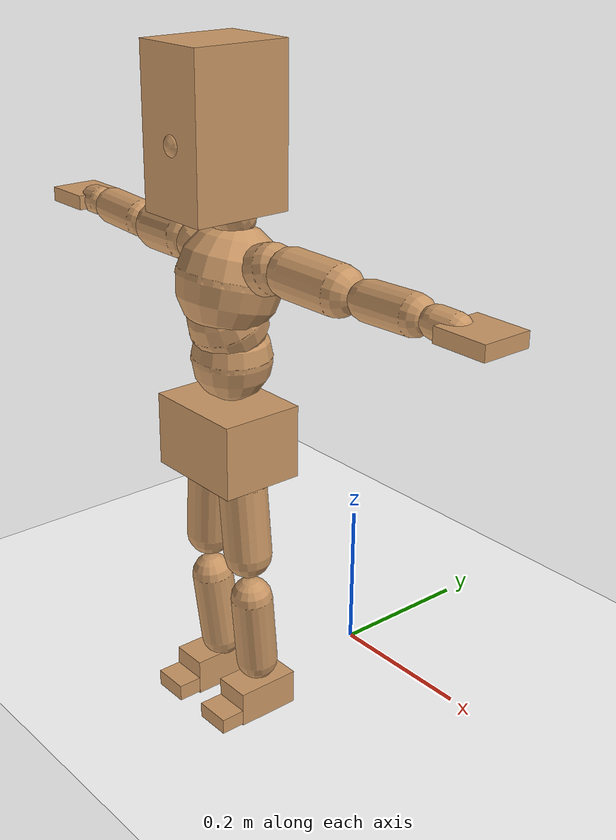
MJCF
<mujoco model="humanoid">
  <option integrator="implicitfast" />

  <visual>
    <global offwidth="1280" offheight="960" />
    <headlight active="1" ambient="0.34 0.34 0.34" diffuse="0.5 0.5 0.5" />
  </visual>

  <default>
    <joint damping="2" stiffness="2" armature="0.01" limited="true" solimplimit="0 .99 .01" />
    <geom condim="1" friction="0.7 0.005 0.0001" solimp=".99 .99 .003" solref="0.015 1" margin="0.001" rgba="0.8 0.6 .4 1" />
    <default class="smplcontact">
      <geom condim="3" friction="1. 0.005 0.0001" solref="0.015 1" solimp="0.98 0.98 0.001" priority="1" />
    </default>
    <default class="stiff_medium">
      <joint stiffness="10" />
    </default>
    <default class="stiff_medium_higher">
      <joint stiffness="50" />
    </default>
    <default class="stiff_high">
      <joint stiffness="100" />
    </default>
  </default>

  <asset>
    <texture type="skybox" builtin="gradient" rgb1="0.99 0.99 0.99" rgb2="0.608 0.828 0.892" width="100" />
    <texture builtin="flat" height="1278" mark="cross" markrgb="1 1 1" name="texgeom" random="0.01" rgb1="0.8 0.6 0.4" rgb2="0.8 0.6 0.4" type="cube" width="127" />
    <texture name="texplane" type="2d" builtin="checker" markrgb="1 1 1" rgb1="0.756 0.772 0.76" rgb2="0.6 0.6 0.6" width="100" height="100" />
    <material name="MatPlane" reflectance="0.5" texture="texplane" texrepeat="1 1" texuniform="true" />
    <material name="geom" texture="texgeom" texuniform="true" />
  </asset>

  <worldbody>
    <light name="tracking_light" pos="0 0 7" dir="0 0 -1" directional="true" cutoff="100" exponent="1" diffuse="1 1 1" specular="0.1 0.1 0.1" mode="trackcom" />
    <camera name="back" pos="0 3 2.4" xyaxes="-1 0 0 0 -1 2" mode="trackcom" />
    <camera name="side" pos="-3 0 2.4" xyaxes="0 -1 0 1 0 2" mode="trackcom" />
    <camera name="front_side" pos="-2.8 -2.8 0.8" xyaxes="0.5 -0.5 0 0.1 0.1 1" mode="trackcom" />
    <geom condim="3" name="floor" pos="0 0 0" rgba="1 1 1 1" size="100 100 .2" type="plane" material="MatPlane" />
    <body name="Pelvis" pos="-0.0018 -0.2233 0.396609" euler="90 0 0">
      <site name="Pelvis" size="0.01" />
      <freejoint name="Pelvis" />
      <geom type="box" pos="-0.0000 -0.0121 -0.0055" size="0.0705148 0.0476255 0.0547495" quat="1.0000 0.0000 0.0000 0.0000" density="3165.830099" name="Pelvis" />
      <body name="L_Hip" pos="0.0291237 -0.0383008 -0.00284951">
        <joint name="L_Hip_x" type="hinge" pos="0 0 0" axis="1 0 0" stiffness="10" range="-160.0 22.92" class="stiff_medium" damping="15" />
        <joint name="L_Hip_y" type="hinge" pos="0 0 0" axis="0 1 0" stiffness="10" range="-70.0 70.0" class="stiff_medium" damping="10" />
        <joint name="L_Hip_z" type="hinge" pos="0 0 0" axis="0 0 1" stiffness="10" range="-28.65 90.0" class="stiff_medium" damping="10" />
        <geom type="capsule" density="2040.816327" fromto="0.00289141 -0.0314284 -0.000377141 0.0114818 -0.125797 -0.00150856" size="0.0310317" name="L_Hip" />
        <body name="L_Knee" pos="0.0143733 -0.157226 -0.0018857">
          <joint name="L_Knee_x" type="hinge" pos="0 0 0" axis="1 0 0" range="-5.16 171.89" damping="8" />
          <joint name="L_Knee_y" type="hinge" pos="0 0 0" axis="0 1 0" range="-4.58 6.88" damping="8" />
          <joint name="L_Knee_z" type="hinge" pos="0 0 0" axis="0 0 1" range="-6.88 4.58" damping="8" />
          <geom type="capsule" density="1234.567901" fromto="-0.00113142 -0.033356 -0.0036457 -0.0045676 -0.133424 -0.0146666" size="0.0272978" name="L_Knee" />
          <body name="L_Ankle" pos="-0.00569902 -0.16678 -0.0183123">
            <joint name="L_Ankle_x" type="hinge" pos="0 0 0" axis="1 0 0" range="-45.84 45.84" class="stiff_medium" damping="6" />
            <joint name="L_Ankle_y" type="hinge" pos="0 0 0" axis="0 1 0" range="-74.48 22.92" class="stiff_medium" damping="3" />
            <joint name="L_Ankle_z" type="hinge" pos="0 0 0" axis="0 0 1" range="-4.58 4.58" class="stiff_medium" damping="6" />
            <geom type="box" pos="0.00976376 -0.0100152 0.0101409" size="0.0243712 0.0234125 0.0428894" quat="1.0000 0.0000 0.0000 0.0000" density="449.071558" name="L_Ankle" class="smplcontact" />
            <body name="L_Toe" pos="0.0110628 -0.0233827 0.0499921">
              <joint name="L_Toe_x" type="hinge" pos="0 0 0" axis="1 0 0" range="-91.67 22.92" />
              <joint name="L_Toe_y" type="hinge" pos="0 0 0" axis="0 1 0" range="-4.58 4.58" />
              <joint name="L_Toe_z" type="hinge" pos="0 0 0" axis="0 0 1" range="-4.58 4.58" />
              <geom type="box" pos="-0.00125714 0.00230475 0.0103923" size="0.024119 0.0100916 0.0250272" quat="1.0000 0.0000 0.0000 0.0000" density="423.206892" name="L_Toe" class="smplcontact" />
            </body>
          </body>
        </body>
      </body>
      <body name="R_Hip" pos="-0.0283694 -0.0379236 -0.0018019">
        <joint name="R_Hip_x" type="hinge" pos="0 0 0" axis="1 0 0" stiffness="10" range="-160.0 22.92" class="stiff_medium" damping="15" />
        <joint name="R_Hip_y" type="hinge" pos="0 0 0" axis="0 1 0" stiffness="10" range="-70.0 70.0" class="stiff_medium" damping="10" />
        <joint name="R_Hip_z" type="hinge" pos="0 0 0" axis="0 0 1" stiffness="10" range="-90.0 28.65" class="stiff_medium" damping="10" />
        <geom type="capsule" density="2040.816327" fromto="-0.00322665 -0.032057 -0.000754282 -0.0128228 -0.12827 -0.00297522" size="0.0305776" name="R_Hip" />
        <body name="R_Knee" pos="-0.0160494 -0.160327 -0.0037295">
          <joint name="R_Knee_x" type="hinge" pos="0 0 0" axis="1 0 0" range="-5.16 171.89" damping="8" />
          <joint name="R_Knee_y" type="hinge" pos="0 0 0" axis="0 1 0" range="-6.88 4.58" damping="8" />
          <joint name="R_Knee_z" type="hinge" pos="0 0 0" axis="0 0 1" range="-4.58 6.88" damping="8" />
          <geom type="capsule" density="1234.567901" fromto="0.00134095 -0.0333979 -0.00356189 0.00527997 -0.13355 -0.0141637" size="0.0272978" name="R_Knee" />
          <body name="R_Ankle" pos="0.00662092 -0.166948 -0.0177256">
            <joint name="R_Ankle_x" type="hinge" pos="0 0 0" axis="1 0 0" range="-45.84 45.84" class="stiff_medium" damping="6" />
            <joint name="R_Ankle_y" type="hinge" pos="0 0 0" axis="0 1 0" range="-22.92 74.48" class="stiff_medium" damping="3" />
            <joint name="R_Ankle_z" type="hinge" pos="0 0 0" axis="0 0 1" range="-4.58 4.58" class="stiff_medium" damping="6" />
            <geom type="box" pos="-0.00888376 -0.00729139 0.0107276" size="0.0243712 0.024119 0.0436462" quat="1.0000 0.0000 0.0000 0.0000" density="434.700981" name="R_Ankle" class="smplcontact" />
            <body name="R_Toe" pos="-0.0106438 -0.0201561 0.0516683">
              <joint name="R_Toe_x" type="hinge" pos="0 0 0" axis="1 0 0" range="-91.67 22.92" />
              <joint name="R_Toe_y" type="hinge" pos="0 0 0" axis="0 1 0" range="-4.58 4.58" />
              <joint name="R_Toe_z" type="hinge" pos="0 0 0" axis="0 0 1" range="-4.58 4.58" />
              <geom type="box" pos="0.00175999 0.0018857 0.00951233" size="0.0241694 0.0108989 0.0248758" quat="1.0000 0.0000 0.0000 0.0000" density="407.384095" name="R_Toe" class="smplcontact" />
            </body>
          </body>
        </body>
      </body>
      <body name="Torso" pos="-0.00128085 0.0558453 -0.0136795">
        <joint name="Torso_x" type="hinge" pos="0 0 0" axis="1 0 0" range="-25.78 57.3" class="stiff_medium" damping="15" />
        <joint name="Torso_y" type="hinge" pos="0 0 0" axis="0 1 0" range="-57.3 57.3" class="stiff_high" damping="20" />
        <joint name="Torso_z" type="hinge" pos="0 0 0" axis="0 0 1" range="-34.38 34.38" class="stiff_high" damping="20" />
        <geom type="capsule" density="2040.816327" fromto="0.00128085 0.0311504 0.000256171 0.00153703 0.038067 0.000307405" size="0.0507258" name="Torso" />
        <body name="Spine" pos="0.00281788 0.0692686 0.000563576">
          <joint name="Spine_x" type="hinge" pos="0 0 0" axis="1 0 0" stiffness="10" range="-25.78 57.3" class="stiff_medium" damping="15" />
          <joint name="Spine_y" type="hinge" pos="0 0 0" axis="0 1 0" stiffness="10" range="-57.3 57.3" class="stiff_high" damping="8" />
          <joint name="Spine_z" type="hinge" pos="0 0 0" axis="0 0 1" stiffness="20" range="-34.38 34.38" class="stiff_high" damping="12" />
          <geom type="capsule" density="2040.816327" fromto="0.000358639 0.0121937 0.0058407 0.000409873 0.0149091 0.00717279" size="0.0498023" name="Spine" />
          <body name="Chest" pos="0.000768513 0.0271029 0.0130135">
            <joint name="Chest_x" type="hinge" pos="0 0 0" axis="1 0 0" stiffness="10" range="-25.78 57.3" class="stiff_medium" damping="15" />
            <joint name="Chest_y" type="hinge" pos="0 0 0" axis="0 1 0" stiffness="10" range="-57.3 57.3" class="stiff_high" damping="8" />
            <joint name="Chest_z" type="hinge" pos="0 0 0" axis="0 0 1" stiffness="20" range="-34.38 34.38" class="stiff_high" damping="12" />
            <geom type="capsule" density="2040.816327" fromto="-0.000461108 0.0349417 -0.00886351 -0.000512342 0.0426781 -0.0108616" size="0.0660952" name="Chest" />
            <body name="Neck" pos="-0.00143456 0.10959 -0.0219795">
              <joint name="Neck_x" type="hinge" pos="0 0 0" axis="1 0 0" range="-28.65 57.3" class="stiff_medium_higher" damping="10" />
              <joint name="Neck_y" type="hinge" pos="0 0 0" axis="0 1 0" range="-40.11 40.11" class="stiff_medium_higher" damping="10" />
              <joint name="Neck_z" type="hinge" pos="0 0 0" axis="0 0 1" range="-40.11 40.11" class="stiff_medium_higher" damping="10" />
              <geom type="capsule" density="1000" fromto="0.000512342 0.00666044 0.00527712 0.0021006 0.0266418 0.0210572" size="0.02876" name="Neck" />
              <body name="Head" pos="0.00382603 0.0478254 0.0377453">
                <joint name="Head_x" type="hinge" pos="0 0 0" axis="1 0 0" range="-28.65 57.3" class="stiff_medium_higher" damping="2" />
                <joint name="Head_y" type="hinge" pos="0 0 0" axis="0 1 0" range="-40.11 40.11" class="stiff_medium_higher" damping="2" />
                <joint name="Head_z" type="hinge" pos="0 0 0" axis="0 0 1" range="-40.11 40.11" class="stiff_medium_higher" damping="2" />
                <geom type="box" pos="-0.00309025 0.0644539 -0.00853499" size="0.0513458 0.0977774 0.0643941" quat="1.0000 0.0000 0.0000 0.0000" density="1018.069894" name="Head" />
                <geom type="capsule" name="nose" size="0.0169458 0.00847291" pos="0 0.0515042 0.0367887" quat="1 0 0 0" mass="0" contype="0" conaffinity="0" />
              </body>
            </body>
            <body name="L_Thorax" pos="0.0358848 0.0554211 -0.0155288">
              <joint name="L_Thorax_x" type="hinge" pos="0 0 0" axis="1 0 0" range="-10.89 4.58" class="stiff_medium_higher" damping="20" />
              <joint name="L_Thorax_y" type="hinge" pos="0 0 0" axis="0 1 0" range="-28.65 17.19" class="stiff_medium_higher" damping="20" />
              <joint name="L_Thorax_z" type="hinge" pos="0 0 0" axis="0 0 1" range="-31.51 40.11" class="stiff_medium_higher" damping="20" />
              <geom type="capsule" density="1000" fromto="0.00828812 0.00277789 -0.000819704 0.0331525 0.0111115 -0.00323328" size="0.031236" name="L_Thorax" />
              <body name="L_Shoulder" pos="0.0414406 0.0138894 -0.00405298">
                <joint name="L_Shoulder_x" type="hinge" pos="0 0 0" axis="1 0 0" range="-97.4 97.4" class="stiff_medium" damping="6" />
                <joint name="L_Shoulder_y" type="hinge" pos="0 0 0" axis="0 1 0" range="-108.86 80.21" class="stiff_medium" damping="6" />
                <joint name="L_Shoulder_z" type="hinge" pos="0 0 0" axis="0 0 1" range="-97.4 85.94" class="stiff_medium" damping="6" />
                <geom type="capsule" density="1000" fromto="0.0236348 -0.00118402 -0.00250465 0.0945848 -0.00464499 -0.0100186" size="0.0309962" name="L_Shoulder" />
                <body name="L_Elbow" pos="0.11822 -0.00582901 -0.0125233">
                  <joint name="L_Elbow_x" type="hinge" pos="0 0 0" axis="1 0 0" range="-17.19 4.58" damping="5" />
                  <joint name="L_Elbow_y" type="hinge" pos="0 0 0" axis="0 1 0" range="-180.0 17.19" damping="5" />
                  <joint name="L_Elbow_z" type="hinge" pos="0 0 0" axis="0 0 1" range="-100.84 4.58" damping="5" />
                  <geom type="capsule" density="1000" fromto="0.0226785 0.000819704 -9.10783e-05 0.090805 0.00327882 -0.000409852" size="0.0242814" name="L_Elbow" />
                  <body name="L_Wrist" pos="0.113484 0.00409852 -0.00054647">
                    <joint name="L_Wrist_x" type="hinge" pos="0 0 0" axis="1 0 0" range="-180.0 22.92" />
                    <joint name="L_Wrist_y" type="hinge" pos="0 0 0" axis="0 1 0" range="-17.19 17.19" />
                    <joint name="L_Wrist_z" type="hinge" pos="0 0 0" axis="0 0 1" range="-22.92 22.92" />
                    <geom type="capsule" density="1000" fromto="0.00765057 -0.000728626 -0.00136617 0.0306023 -0.00296004 -0.0054647" size="0.0190654" name="L_Wrist" class="smplcontact" />
                    <body name="L_Hand" pos="0.0382529 -0.00373421 -0.00678533">
                      <joint name="L_Hand_x" type="hinge" pos="0 0 0" axis="1 0 0" range="-17.19 17.19" />
                      <joint name="L_Hand_y" type="hinge" pos="0 0 0" axis="0 1 0" range="-51.57 51.57" />
                      <joint name="L_Hand_z" type="hinge" pos="0 0 0" axis="0 0 1" range="-91.67 91.67" />
                      <geom type="box" pos="0.0224508 0.000455391 -0.00264127" size="0.0350731 0.00947273 0.0322553" quat="1.0000 0.0000 0.0000 0.0000" density="400.552564" name="L_Hand" class="smplcontact" />
                    </body>
                  </body>
                </body>
              </body>
            </body>
            <body name="R_Thorax" pos="-0.037251 0.0541005 -0.0175781">
              <joint name="R_Thorax_x" type="hinge" pos="0 0 0" axis="1 0 0" range="-10.89 4.58" class="stiff_medium_higher" damping="20" />
              <joint name="R_Thorax_y" type="hinge" pos="0 0 0" axis="0 1 0" range="-17.19 28.65" class="stiff_medium_higher" damping="20" />
              <joint name="R_Thorax_z" type="hinge" pos="0 0 0" axis="0 0 1" range="-40.11 31.51" class="stiff_medium_higher" damping="20" />
              <geom type="capsule" density="1000" fromto="-0.00874351 0.00296004 -0.000819704 -0.034974 0.0118402 -0.00332436" size="0.0306365" name="R_Thorax" />
              <body name="R_Shoulder" pos="-0.0437176 0.0148458 -0.00414406">
                <joint name="R_Shoulder_x" type="hinge" pos="0 0 0" axis="1 0 0" range="-97.4 97.4" class="stiff_medium" damping="6" />
                <joint name="R_Shoulder_y" type="hinge" pos="0 0 0" axis="0 1 0" range="-80.21 108.86" class="stiff_medium" damping="6" />
                <joint name="R_Shoulder_z" type="hinge" pos="0 0 0" axis="0 0 1" range="-85.94 97.4" class="stiff_medium" damping="6" />
                <geom type="capsule" density="1000" fromto="-0.0230883 -0.00122956 -0.00195818 -0.0924444 -0.00487269 -0.00778719" size="0.0318356" name="R_Shoulder" />
                <body name="R_Elbow" pos="-0.115533 -0.0060567 -0.00974537">
                  <joint name="R_Elbow_x" type="hinge" pos="0 0 0" axis="1 0 0" range="-17.19 4.58" damping="5" />
                  <joint name="R_Elbow_y" type="hinge" pos="0 0 0" axis="0 1 0" range="-17.19 180.0" damping="5" />
                  <joint name="R_Elbow_z" type="hinge" pos="0 0 0" axis="0 0 1" range="-4.58 100.84" damping="5" />
                  <geom type="capsule" density="1000" fromto="-0.0232705 0.000728626 -0.00050093 -0.0929909 0.00282343 -0.00200372" size="0.0244612" name="R_Elbow" />
                  <body name="R_Wrist" pos="-0.116261 0.00355205 -0.00255019">
                    <joint name="R_Wrist_x" type="hinge" pos="0 0 0" axis="1 0 0" range="-180.0 22.92" />
                    <joint name="R_Wrist_y" type="hinge" pos="0 0 0" axis="0 1 0" range="-17.19 17.19" />
                    <joint name="R_Wrist_z" type="hinge" pos="0 0 0" axis="0 0 1" range="-22.92 22.92" />
                    <geom type="capsule" density="1000" fromto="-0.00769611 -0.00054647 -0.000956322 -0.03083 -0.00223142 -0.00377975" size="0.019545" name="R_Wrist" class="smplcontact" />
                    <body name="R_Hand" pos="-0.0385261 -0.00277789 -0.00469053">
                      <joint name="R_Hand_x" type="hinge" pos="0 0 0" axis="1 0 0" range="-17.19 17.19" />
                      <joint name="R_Hand_y" type="hinge" pos="0 0 0" axis="0 1 0" range="-51.57 51.57" />
                      <joint name="R_Hand_z" type="hinge" pos="0 0 0" axis="0 0 1" range="-91.67 91.67" />
                      <geom type="box" pos="-0.0210391 -0.000409852 -0.00359759" size="0.0341138 0.00983246 0.0327349" quat="1.0000 0.0000 0.0000 0.0000" density="403.679611" name="R_Hand" class="smplcontact" />
                    </body>
                  </body>
                </body>
              </body>
            </body>
          </body>
        </body>
      </body>
    </body>
  </worldbody>
  <actuator>
    <general name="L_Hip_x" joint="L_Hip_x" biastype="affine" gainprm="287.33006409732246" biasprm="-215.3247604770444 -180 -2.0" ctrllimited="true" ctrlrange="-1 1" forcerange="-360 360" />
    <general name="L_Hip_y" joint="L_Hip_y" biastype="affine" gainprm="219.9114857512855" biasprm="0.0 -180 -2.0" ctrllimited="true" ctrlrange="-1 1" forcerange="-360 360" />
    <general name="L_Hip_z" joint="L_Hip_z" biastype="affine" gainprm="186.3749841742145" biasprm="96.3683546488669 -180 -2.0" ctrllimited="true" ctrlrange="-1 1" forcerange="-360 360" />
    <general name="L_Knee_x" joint="L_Knee_x" biastype="affine" gainprm="278.10948965903646" biasprm="261.8988715665131 -180 -2.0" ctrllimited="true" ctrlrange="-1 1" forcerange="-360 360" />
    <general name="L_Knee_y" joint="L_Knee_y" biastype="affine" gainprm="18.001325905069514" biasprm="3.612831551628262 -180 -2.0" ctrllimited="true" ctrlrange="-1 1" forcerange="-360 360" />
    <general name="L_Knee_z" joint="L_Knee_z" biastype="affine" gainprm="18.001325905069514" biasprm="-3.612831551628262 -180 -2.0" ctrllimited="true" ctrlrange="-1 1" forcerange="-360 360" />
    <general name="L_Ankle_x" joint="L_Ankle_x" biastype="affine" gainprm="72.00530362027807" biasprm="0.0 -90 -2.0" ctrllimited="true" ctrlrange="-1 1" forcerange="-180 180" />
    <general name="L_Ankle_y" joint="L_Ankle_y" biastype="affine" gainprm="76.49778111491148" biasprm="-40.49512930477244 -90 -2.0" ctrllimited="true" ctrlrange="-1 1" forcerange="-180 180" />
    <general name="L_Ankle_z" joint="L_Ankle_z" biastype="affine" gainprm="7.1942471767206255" biasprm="0.0 -90 -2.0" ctrllimited="true" ctrlrange="-1 1" forcerange="-180 180" />
    <general name="L_Toe_x" joint="L_Toe_x" biastype="affine" gainprm="71.99902043497087" biasprm="-43.19689898685965 -72 -0.8" ctrllimited="true" ctrlrange="-1 1" forcerange="-144 144" />
    <general name="L_Toe_y" joint="L_Toe_y" biastype="affine" gainprm="5.755397741376501" biasprm="0.0 -72 -0.8" ctrllimited="true" ctrlrange="-1 1" forcerange="-144 144" />
    <general name="L_Toe_z" joint="L_Toe_z" biastype="affine" gainprm="5.755397741376501" biasprm="0.0 -72 -0.8" ctrllimited="true" ctrlrange="-1 1" forcerange="-144 144" />
    <general name="R_Hip_x" joint="R_Hip_x" biastype="affine" gainprm="287.33006409732246" biasprm="-215.3247604770444 -180 -2.0" ctrllimited="true" ctrlrange="-1 1" forcerange="-360 360" />
    <general name="R_Hip_y" joint="R_Hip_y" biastype="affine" gainprm="219.9114857512855" biasprm="0.0 -180 -2.0" ctrllimited="true" ctrlrange="-1 1" forcerange="-360 360" />
    <general name="R_Hip_z" joint="R_Hip_z" biastype="affine" gainprm="186.3749841742145" biasprm="-96.3683546488669 -180 -2.0" ctrllimited="true" ctrlrange="-1 1" forcerange="-360 360" />
    <general name="R_Knee_x" joint="R_Knee_x" biastype="affine" gainprm="278.10948965903646" biasprm="261.8988715665131 -180 -2.0" ctrllimited="true" ctrlrange="-1 1" forcerange="-360 360" />
    <general name="R_Knee_y" joint="R_Knee_y" biastype="affine" gainprm="18.001325905069514" biasprm="-3.612831551628262 -180 -2.0" ctrllimited="true" ctrlrange="-1 1" forcerange="-360 360" />
    <general name="R_Knee_z" joint="R_Knee_z" biastype="affine" gainprm="18.001325905069514" biasprm="3.612831551628262 -180 -2.0" ctrllimited="true" ctrlrange="-1 1" forcerange="-360 360" />
    <general name="R_Ankle_x" joint="R_Ankle_x" biastype="affine" gainprm="72.00530362027807" biasprm="0.0 -90 -2.0" ctrllimited="true" ctrlrange="-1 1" forcerange="-180 180" />
    <general name="R_Ankle_y" joint="R_Ankle_y" biastype="affine" gainprm="76.49778111491148" biasprm="40.49512930477244 -90 -2.0" ctrllimited="true" ctrlrange="-1 1" forcerange="-180 180" />
    <general name="R_Ankle_z" joint="R_Ankle_z" biastype="affine" gainprm="7.1942471767206255" biasprm="0.0 -90 -2.0" ctrllimited="true" ctrlrange="-1 1" forcerange="-180 180" />
    <general name="R_Toe_x" joint="R_Toe_x" biastype="affine" gainprm="71.99902043497087" biasprm="-43.19689898685965 -72 -0.8" ctrllimited="true" ctrlrange="-1 1" forcerange="-144 144" />
    <general name="R_Toe_y" joint="R_Toe_y" biastype="affine" gainprm="5.755397741376501" biasprm="0.0 -72 -0.8" ctrllimited="true" ctrlrange="-1 1" forcerange="-144 144" />
    <general name="R_Toe_z" joint="R_Toe_z" biastype="affine" gainprm="5.755397741376501" biasprm="0.0 -72 -0.8" ctrllimited="true" ctrlrange="-1 1" forcerange="-144 144" />
    <general name="Torso_x" joint="Torso_x" biastype="affine" gainprm="174.00234510682668" biasprm="66.0153336274335 -240 -4.0" ctrllimited="true" ctrlrange="-1 1" forcerange="-360 360" />
    <general name="Torso_y" joint="Torso_y" biastype="affine" gainprm="240.0176787342602" biasprm="0.0 -240 -4.0" ctrllimited="true" ctrlrange="-1 1" forcerange="-360 360" />
    <general name="Torso_z" joint="Torso_z" biastype="affine" gainprm="144.01060724055614" biasprm="0.0 -240 -4.0" ctrllimited="true" ctrlrange="-1 1" forcerange="-360 360" />
    <general name="Spine_x" joint="Spine_x" biastype="affine" gainprm="174.00234510682668" biasprm="66.0153336274335 -240 -4.0" ctrllimited="true" ctrlrange="-1 1" forcerange="-360 360" />
    <general name="Spine_y" joint="Spine_y" biastype="affine" gainprm="240.0176787342602" biasprm="0.0 -240 -4.0" ctrllimited="true" ctrlrange="-1 1" forcerange="-360 360" />
    <general name="Spine_z" joint="Spine_z" biastype="affine" gainprm="144.01060724055614" biasprm="0.0 -240 -4.0" ctrllimited="true" ctrlrange="-1 1" forcerange="-360 360" />
    <general name="Chest_x" joint="Chest_x" biastype="affine" gainprm="174.00234510682668" biasprm="66.0153336274335 -240 -4.0" ctrllimited="true" ctrlrange="-1 1" forcerange="-360 360" />
    <general name="Chest_y" joint="Chest_y" biastype="affine" gainprm="240.0176787342602" biasprm="0.0 -240 -4.0" ctrllimited="true" ctrlrange="-1 1" forcerange="-360 360" />
    <general name="Chest_z" joint="Chest_z" biastype="affine" gainprm="144.01060724055614" biasprm="0.0 -240 -4.0" ctrllimited="true" ctrlrange="-1 1" forcerange="-360 360" />
    <general name="Neck_x" joint="Neck_x" biastype="affine" gainprm="27.00198885760427" biasprm="9.000662952534757 -36 -0.8" ctrllimited="true" ctrlrange="-1 1" forcerange="-72 72" />
    <general name="Neck_y" joint="Neck_y" biastype="affine" gainprm="25.20185626709732" biasprm="0.0 -36 -0.8" ctrllimited="true" ctrlrange="-1 1" forcerange="-72 72" />
    <general name="Neck_z" joint="Neck_z" biastype="affine" gainprm="25.20185626709732" biasprm="0.0 -36 -0.8" ctrllimited="true" ctrlrange="-1 1" forcerange="-72 72" />
    <general name="Head_x" joint="Head_x" biastype="affine" gainprm="18.001325905069514" biasprm="6.000441968356505 -24 -0.8" ctrllimited="true" ctrlrange="-1 1" forcerange="-48 48" />
    <general name="Head_y" joint="Head_y" biastype="affine" gainprm="16.801237511398213" biasprm="0.0 -24 -0.8" ctrllimited="true" ctrlrange="-1 1" forcerange="-48 48" />
    <general name="Head_z" joint="Head_z" biastype="affine" gainprm="16.801237511398213" biasprm="0.0 -24 -0.8" ctrllimited="true" ctrlrange="-1 1" forcerange="-48 48" />
    <general name="L_Thorax_x" joint="L_Thorax_x" biastype="affine" gainprm="16.200146117011364" biasprm="-6.6078165480505335 -120 -1.6" ctrllimited="true" ctrlrange="-1 1" forcerange="-240 240" />
    <general name="L_Thorax_y" joint="L_Thorax_y" biastype="affine" gainprm="48.00353574685204" biasprm="-12.00088393671301 -120 -1.6" ctrllimited="true" ctrlrange="-1 1" forcerange="-240 240" />
    <general name="L_Thorax_z" joint="L_Thorax_z" biastype="affine" gainprm="75.00028861670033" biasprm="9.00589894029074 -120 -1.6" ctrllimited="true" ctrlrange="-1 1" forcerange="-240 240" />
    <general name="L_Shoulder_x" joint="L_Shoulder_x" biastype="affine" gainprm="81.5976331892389" biasprm="0.0 -48 -1.6" ctrllimited="true" ctrlrange="-1 1" forcerange="-96 96" />
    <general name="L_Shoulder_y" joint="L_Shoulder_y" biastype="affine" gainprm="79.19745640189629" biasprm="-12.00088393671301 -48 -1.6" ctrllimited="true" ctrlrange="-1 1" forcerange="-96 96" />
    <general name="L_Shoulder_z" joint="L_Shoulder_z" biastype="affine" gainprm="76.79727961455369" biasprm="-4.800353574685214 -48 -1.6" ctrllimited="true" ctrlrange="-1 1" forcerange="-96 96" />
    <general name="L_Elbow_x" joint="L_Elbow_x" biastype="affine" gainprm="13.67849441372996" biasprm="-7.923096672353461 -72 -0.8" ctrllimited="true" ctrlrange="-1 1" forcerange="-144 144" />
    <general name="L_Elbow_y" joint="L_Elbow_y" biastype="affine" gainprm="123.89813107227425" biasprm="-102.29653998619085 -72 -0.8" ctrllimited="true" ctrlrange="-1 1" forcerange="-144 144" />
    <general name="L_Elbow_z" joint="L_Elbow_z" biastype="affine" gainprm="66.23733950828719" biasprm="-60.4819417669107 -72 -0.8" ctrllimited="true" ctrlrange="-1 1" forcerange="-144 144" />
    <general name="L_Wrist_x" joint="L_Wrist_x" biastype="affine" gainprm="21.24973270888136" biasprm="-16.449379134196157 -12 -0.8" ctrllimited="true" ctrlrange="-1 1" forcerange="-24 24" />
    <general name="L_Wrist_y" joint="L_Wrist_y" biastype="affine" gainprm="3.6002651810139037" biasprm="0.0 -12 -0.8" ctrllimited="true" ctrlrange="-1 1" forcerange="-24 24" />
    <general name="L_Wrist_z" joint="L_Wrist_z" biastype="affine" gainprm="4.800353574685205" biasprm="0.0 -12 -0.8" ctrllimited="true" ctrlrange="-1 1" forcerange="-24 24" />
    <general name="L_Hand_x" joint="L_Hand_x" biastype="affine" gainprm="3.6002651810139037" biasprm="0.0 -12 -0.8" ctrllimited="true" ctrlrange="-1 1" forcerange="-24 24" />
    <general name="L_Hand_y" joint="L_Hand_y" biastype="affine" gainprm="10.800795543041708" biasprm="0.0 -12 -0.8" ctrllimited="true" ctrlrange="-1 1" forcerange="-24 24" />
    <general name="L_Hand_z" joint="L_Hand_z" biastype="affine" gainprm="19.199319903638422" biasprm="0.0 -12 -0.8" ctrllimited="true" ctrlrange="-1 1" forcerange="-24 24" />
    <general name="R_Thorax_x" joint="R_Thorax_x" biastype="affine" gainprm="16.200146117011364" biasprm="-6.6078165480505335 -120 -1.6" ctrllimited="true" ctrlrange="-1 1" forcerange="-240 240" />
    <general name="R_Thorax_y" joint="R_Thorax_y" biastype="affine" gainprm="48.00353574685204" biasprm="12.000883936713002 -120 -1.6" ctrllimited="true" ctrlrange="-1 1" forcerange="-240 240" />
    <general name="R_Thorax_z" joint="R_Thorax_z" biastype="affine" gainprm="75.00028861670033" biasprm="-9.00589894029074 -120 -1.6" ctrllimited="true" ctrlrange="-1 1" forcerange="-240 240" />
    <general name="R_Shoulder_x" joint="R_Shoulder_x" biastype="affine" gainprm="81.5976331892389" biasprm="0.0 -48 -1.6" ctrllimited="true" ctrlrange="-1 1" forcerange="-96 96" />
    <general name="R_Shoulder_y" joint="R_Shoulder_y" biastype="affine" gainprm="79.19745640189629" biasprm="12.00088393671301 -48 -1.6" ctrllimited="true" ctrlrange="-1 1" forcerange="-96 96" />
    <general name="R_Shoulder_z" joint="R_Shoulder_z" biastype="affine" gainprm="76.79727961455369" biasprm="4.800353574685204 -48 -1.6" ctrllimited="true" ctrlrange="-1 1" forcerange="-96 96" />
    <general name="R_Elbow_x" joint="R_Elbow_x" biastype="affine" gainprm="13.67849441372996" biasprm="-7.923096672353461 -72 -0.8" ctrllimited="true" ctrlrange="-1 1" forcerange="-144 144" />
    <general name="R_Elbow_y" joint="R_Elbow_y" biastype="affine" gainprm="123.89813107227425" biasprm="102.29653998619085 -72 -0.8" ctrllimited="true" ctrlrange="-1 1" forcerange="-144 144" />
    <general name="R_Elbow_z" joint="R_Elbow_z" biastype="affine" gainprm="66.23733950828719" biasprm="60.481941766910694 -72 -0.8" ctrllimited="true" ctrlrange="-1 1" forcerange="-144 144" />
    <general name="R_Wrist_x" joint="R_Wrist_x" biastype="affine" gainprm="21.24973270888136" biasprm="-16.449379134196157 -12 -0.8" ctrllimited="true" ctrlrange="-1 1" forcerange="-24 24" />
    <general name="R_Wrist_y" joint="R_Wrist_y" biastype="affine" gainprm="3.6002651810139037" biasprm="0.0 -12 -0.8" ctrllimited="true" ctrlrange="-1 1" forcerange="-24 24" />
    <general name="R_Wrist_z" joint="R_Wrist_z" biastype="affine" gainprm="4.800353574685205" biasprm="0.0 -12 -0.8" ctrllimited="true" ctrlrange="-1 1" forcerange="-24 24" />
    <general name="R_Hand_x" joint="R_Hand_x" biastype="affine" gainprm="3.6002651810139037" biasprm="0.0 -12 -0.8" ctrllimited="true" ctrlrange="-1 1" forcerange="-24 24" />
    <general name="R_Hand_y" joint="R_Hand_y" biastype="affine" gainprm="10.800795543041708" biasprm="0.0 -12 -0.8" ctrllimited="true" ctrlrange="-1 1" forcerange="-24 24" />
    <general name="R_Hand_z" joint="R_Hand_z" biastype="affine" gainprm="19.199319903638422" biasprm="0.0 -12 -0.8" ctrllimited="true" ctrlrange="-1 1" forcerange="-24 24" />
  </actuator>
  <contact>
    <exclude body1="Torso" body2="Chest" />
    <exclude body1="Head" body2="Chest" />
    <exclude body1="R_Knee" body2="R_Toe" />
    <exclude body1="R_Knee" body2="L_Ankle" />
    <exclude body1="R_Knee" body2="L_Toe" />
    <exclude body1="L_Knee" body2="L_Toe" />
    <exclude body1="L_Knee" body2="R_Ankle" />
    <exclude body1="L_Knee" body2="R_Toe" />
    <exclude body1="L_Shoulder" body2="Chest" />
    <exclude body1="R_Shoulder" body2="Chest" />
  </contact>
  <sensor>
    <framelinvel name="sensor_Pelvis_framelinvel" objtype="xbody" objname="Pelvis" />
    <framelinvel name="sensor_L_Hip_framelinvel" objtype="xbody" objname="L_Hip" />
    <framelinvel name="sensor_L_Knee_framelinvel" objtype="xbody" objname="L_Knee" />
    <framelinvel name="sensor_L_Ankle_framelinvel" objtype="xbody" objname="L_Ankle" />
    <framelinvel name="sensor_L_Toe_framelinvel" objtype="xbody" objname="L_Toe" />
    <framelinvel name="sensor_R_Hip_framelinvel" objtype="xbody" objname="R_Hip" />
    <framelinvel name="sensor_R_Knee_framelinvel" objtype="xbody" objname="R_Knee" />
    <framelinvel name="sensor_R_Ankle_framelinvel" objtype="xbody" objname="R_Ankle" />
    <framelinvel name="sensor_R_Toe_framelinvel" objtype="xbody" objname="R_Toe" />
    <framelinvel name="sensor_Torso_framelinvel" objtype="xbody" objname="Torso" />
    <framelinvel name="sensor_Spine_framelinvel" objtype="xbody" objname="Spine" />
    <framelinvel name="sensor_Chest_framelinvel" objtype="xbody" objname="Chest" />
    <framelinvel name="sensor_Neck_framelinvel" objtype="xbody" objname="Neck" />
    <framelinvel name="sensor_Head_framelinvel" objtype="xbody" objname="Head" />
    <framelinvel name="sensor_L_Thorax_framelinvel" objtype="xbody" objname="L_Thorax" />
    <framelinvel name="sensor_L_Shoulder_framelinvel" objtype="xbody" objname="L_Shoulder" />
    <framelinvel name="sensor_L_Elbow_framelinvel" objtype="xbody" objname="L_Elbow" />
    <framelinvel name="sensor_L_Wrist_framelinvel" objtype="xbody" objname="L_Wrist" />
    <framelinvel name="sensor_L_Hand_framelinvel" objtype="xbody" objname="L_Hand" />
    <framelinvel name="sensor_R_Thorax_framelinvel" objtype="xbody" objname="R_Thorax" />
    <framelinvel name="sensor_R_Shoulder_framelinvel" objtype="xbody" objname="R_Shoulder" />
    <framelinvel name="sensor_R_Elbow_framelinvel" objtype="xbody" objname="R_Elbow" />
    <framelinvel name="sensor_R_Wrist_framelinvel" objtype="xbody" objname="R_Wrist" />
    <framelinvel name="sensor_R_Hand_framelinvel" objtype="xbody" objname="R_Hand" />
    <frameangvel name="sensor_Pelvis_frameangvel" objtype="xbody" objname="Pelvis" />
    <frameangvel name="sensor_L_Hip_frameangvel" objtype="xbody" objname="L_Hip" />
    <frameangvel name="sensor_L_Knee_frameangvel" objtype="xbody" objname="L_Knee" />
    <frameangvel name="sensor_L_Ankle_frameangvel" objtype="xbody" objname="L_Ankle" />
    <frameangvel name="sensor_L_Toe_frameangvel" objtype="xbody" objname="L_Toe" />
    <frameangvel name="sensor_R_Hip_frameangvel" objtype="xbody" objname="R_Hip" />
    <frameangvel name="sensor_R_Knee_frameangvel" objtype="xbody" objname="R_Knee" />
    <frameangvel name="sensor_R_Ankle_frameangvel" objtype="xbody" objname="R_Ankle" />
    <frameangvel name="sensor_R_Toe_frameangvel" objtype="xbody" objname="R_Toe" />
    <frameangvel name="sensor_Torso_frameangvel" objtype="xbody" objname="Torso" />
    <frameangvel name="sensor_Spine_frameangvel" objtype="xbody" objname="Spine" />
    <frameangvel name="sensor_Chest_frameangvel" objtype="xbody" objname="Chest" />
    <frameangvel name="sensor_Neck_frameangvel" objtype="xbody" objname="Neck" />
    <frameangvel name="sensor_Head_frameangvel" objtype="xbody" objname="Head" />
    <frameangvel name="sensor_L_Thorax_frameangvel" objtype="xbody" objname="L_Thorax" />
    <frameangvel name="sensor_L_Shoulder_frameangvel" objtype="xbody" objname="L_Shoulder" />
    <frameangvel name="sensor_L_Elbow_frameangvel" objtype="xbody" objname="L_Elbow" />
    <frameangvel name="sensor_L_Wrist_frameangvel" objtype="xbody" objname="L_Wrist" />
    <frameangvel name="sensor_L_Hand_frameangvel" objtype="xbody" objname="L_Hand" />
    <frameangvel name="sensor_R_Thorax_frameangvel" objtype="xbody" objname="R_Thorax" />
    <frameangvel name="sensor_R_Shoulder_frameangvel" objtype="xbody" objname="R_Shoulder" />
    <frameangvel name="sensor_R_Elbow_frameangvel" objtype="xbody" objname="R_Elbow" />
    <frameangvel name="sensor_R_Wrist_frameangvel" objtype="xbody" objname="R_Wrist" />
    <frameangvel name="sensor_R_Hand_frameangvel" objtype="xbody" objname="R_Hand" />
    <subtreelinvel name="Chest_subtreelinvel" body="Chest" />
    <gyro name="Pelvis_gyro" site="Pelvis" />
  </sensor>
</mujoco>
